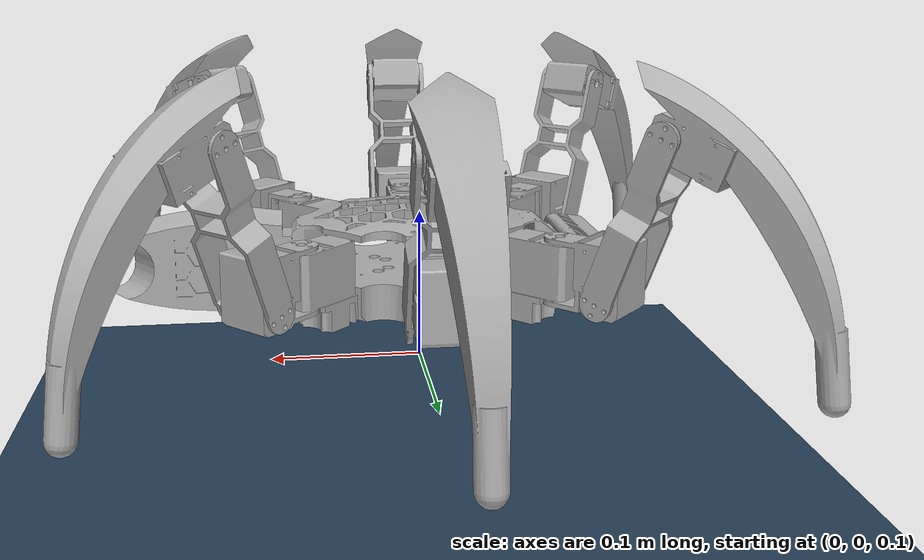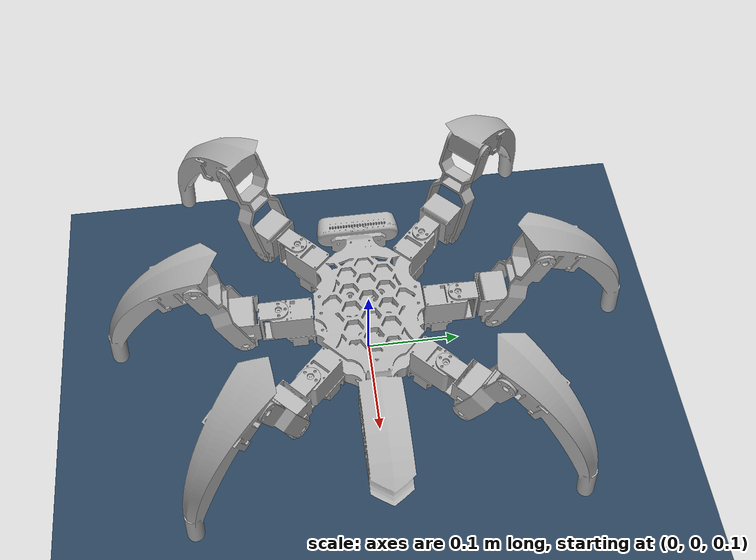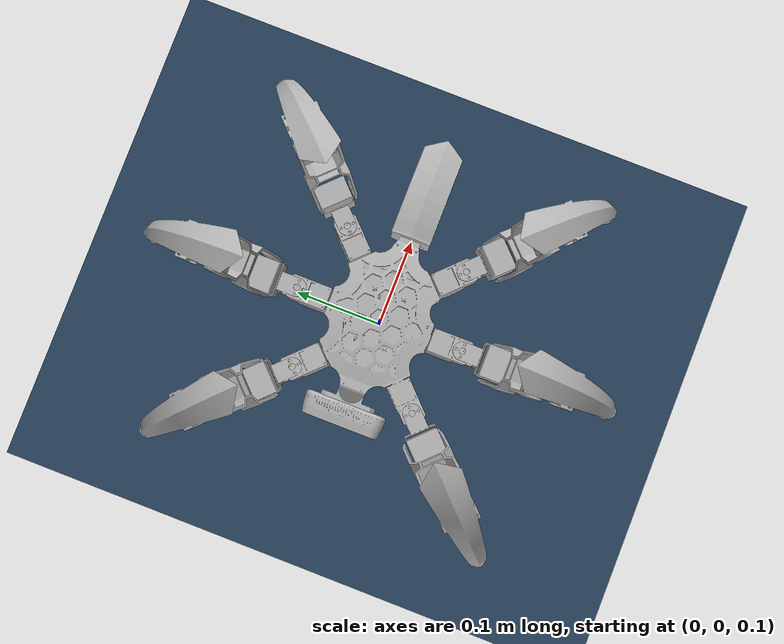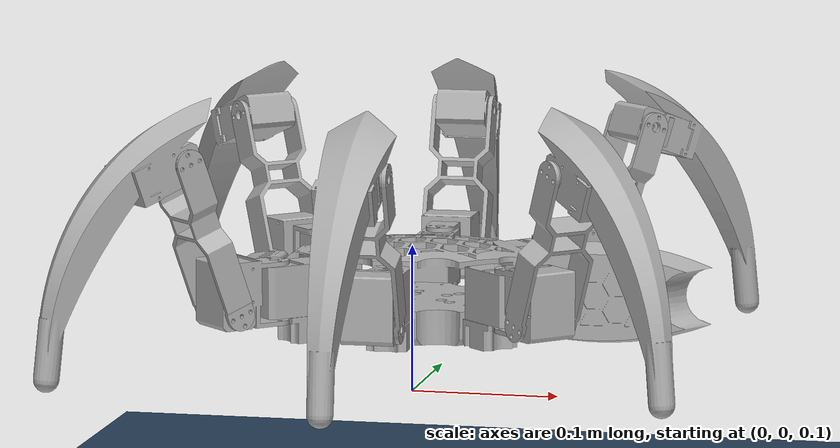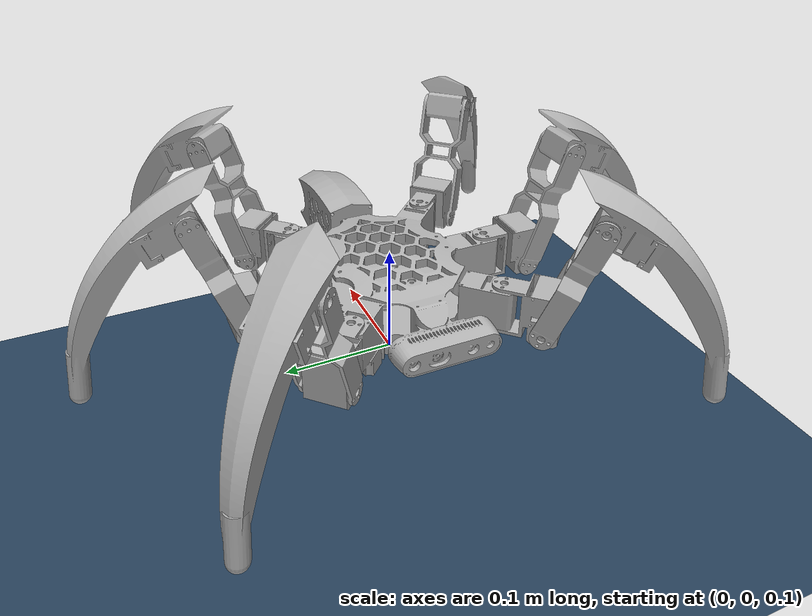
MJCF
<mujoco model="nightmare">
  <compiler angle="radian" settotalmass="3" inertiafromgeom="true"/>
  <option gravity="0 0 -9.81"  integrator="implicitfast" timestep="0.008" iterations="3" ls_iterations="6" noslip_iterations="4" noslip_tolerance="1e-6" solver="PGS"/>
  <asset>
    <mesh name="base_link" file="base_link.stl" scale="0.001 0.001 0.001"/>
    <mesh name="leg_1_tibia" file="leg_1_tibia.stl" scale="0.001 0.001 0.001"/>
    <mesh name="leg_1_coxa" file="leg_1_coxa.stl" scale="0.001 0.001 0.001"/>
    <mesh name="leg_2_tibia" file="leg_2_tibia.stl" scale="0.001 0.001 0.001"/>
    <mesh name="leg_2_coxa" file="leg_2_coxa.stl" scale="0.001 0.001 0.001"/>
    <mesh name="leg_3_tibia" file="leg_3_tibia.stl" scale="0.001 0.001 0.001"/>
    <mesh name="leg_3_coxa" file="leg_3_coxa.stl" scale="0.001 0.001 0.001"/>
    <mesh name="leg_4_tibia" file="leg_4_tibia.stl" scale="0.001 0.001 0.001"/>
    <mesh name="leg_4_femur" file="leg_4_femur.stl" scale="0.001 0.001 0.001"/>
    <mesh name="leg_4_coxa" file="leg_4_coxa.stl" scale="0.001 0.001 0.001"/>
    <mesh name="leg_5_tibia" file="leg_5_tibia.stl" scale="0.001 0.001 0.001"/>
    <mesh name="leg_5_femur" file="leg_5_femur.stl" scale="0.001 0.001 0.001"/>
    <mesh name="leg_5_coxa" file="leg_5_coxa.stl" scale="0.001 0.001 0.001"/>
    <mesh name="leg_6_tibia" file="leg_6_tibia.stl" scale="0.001 0.001 0.001"/>
    <mesh name="leg_6_femur" file="leg_6_femur.stl" scale="0.001 0.001 0.001"/>
    <mesh name="leg_6_coxa" file="leg_6_coxa.stl" scale="0.001 0.001 0.001"/>
    <mesh name="leg_1_femur" file="leg_1_femur.stl" scale="0.001 0.001 0.001"/>
    <mesh name="leg_2_femur" file="leg_2_femur.stl" scale="0.001 0.001 0.001"/>
    <mesh name="leg_3_femur" file="leg_3_femur.stl" scale="0.001 0.001 0.001"/>
    <texture type="skybox" builtin="gradient" rgb1="0.3 0.5 0.7" rgb2="0 0 0" width="512" height="3072"/>
    <texture type="2d" name="groundplane" builtin="checker" mark="edge" rgb1="0.2 0.3 0.4" rgb2="0.1 0.2 0.3"
      markrgb="0.8 0.8 0.8" width="300" height="300"/>
    <material name="groundplane" texture="groundplane" texuniform="true" texrepeat="5 5" reflectance="0.2"/>
  </asset>
  <worldbody>
    <!-- checker board -->
    <light pos="0 0 1.5" dir="0 0 -1" directional="true"/>
    <geom name="floor" size="0 0 0.05" type="plane" material="groundplane" contype="1" conaffinity="1"/>
    <body name="base_link" pos="0 0 0.15">
      <geom quat="0.707107 0 0 0.707107" type="mesh" rgba="0.7 0.7 0.7 1" mesh="base_link" name="base_link" contype="0" conaffinity="1"/>
      <site name="base_link" type="sphere" size="10" pos="0 0 0" rgba="0.7 0.7 0.7 0"/>
      <joint type="free"/>
      <body name="leg_1_coxa" pos="-0.079498 0.067171 0.0455" quat="0.707107 0 0 0.707107">
        <joint name="leg1coxa" pos="0 0 0" axis="0 0 -1"/>
        <geom pos="-0.067171 -0.079498 -0.0455" type="mesh" rgba="0.7 0.7 0.7 1" mesh="leg_1_coxa" name="leg_1_coxa" contype="0" conaffinity="0"/>
        <site name="leg_1_coxa" type="sphere" size="10" pos="0 0 0" rgba="0.7 0.7 0.7 0"/>
        <body name="leg_1_femur" pos="0.014143 0.03889 -0.0285">
          <joint name="leg1femur" pos="0 0 0" axis="0.707107 -0.707107 0"/>
          <geom pos="-0.081314 -0.118388 -0.017" type="mesh" rgba="0.7 0.7 0.7 1" mesh="leg_1_femur" name="leg_1_femur" contype="0" conaffinity="0"/>
          <site name="leg_1_femur" type="sphere" size="10" pos="0 0 0" rgba="0.7 0.7 0.7 0"/>
          <body name="leg_1_tibia" pos="0.026603 0.026603 0.103366">
            <joint name="leg1tibia" pos="0 0 0" axis="-0.707107 0.707107 0"/>
            <geom pos="-0.107917 -0.144991 -0.120366" type="mesh" rgba="0.7 0.7 0.7 1" mesh="leg_1_tibia" name="leg_1_tibia" contype="2" conaffinity="3"/>
            <site name="leg_1_tibia" type="sphere" size="10" pos="0 0 0" rgba="0.7 0.7 0.7 0"/>
            <site name="leg_1_foot" type="sphere" size="0.007" pos="0.083143 0.055315 -0.13882" rgba="0.7 0.7 0.7 0"/>
          </body>
        </body>
      </body>
      <body name="leg_2_coxa" pos="0 0.093 0.0455" quat="0.707107 0 0 0.707107">
        <joint name="leg2coxa" pos="0 0 0" axis="0 0 -1"/>
        <geom pos="-0.093 0 -0.0455" type="mesh" rgba="0.7 0.7 0.7 1" mesh="leg_2_coxa" name="leg_2_coxa" contype="0" conaffinity="0"/>
        <site name="leg_2_coxa" type="sphere" size="10" pos="0 0 0" rgba="0.7 0.7 0.7 0"/>
        <body name="leg_2_femur" pos="0.0375 0.0165 -0.0285">
          <joint name="leg2femur" pos="0 0 0" axis="0 -1 0"/>
          <geom pos="-0.1305 -0.0165 -0.017" type="mesh" rgba="0.7 0.7 0.7 1" mesh="leg_2_femur" name="leg_2_femur" contype="0" conaffinity="0"/>
          <site name="leg_2_femur" type="sphere" size="10" pos="0 0 0" rgba="0.7 0.7 0.7 0"/>
          <body name="leg_2_tibia" pos="0.037622 0 0.103366">
            <joint name="leg2tibia" pos="0 0 0" axis="0 1 0"/>
            <geom pos="-0.168122 -0.0165 -0.120366" type="mesh" rgba="0.7 0.7 0.7 1" mesh="leg_2_tibia" name="leg_2_tibia" contype="2" conaffinity="3"/>
            <site name="leg_2_tibia" type="sphere" size="10" pos="0 0 0" rgba="0.7 0.7 0.7 0"/>
            <site name="leg_2_foot" type="sphere" size="0.007" pos="0.098086 -0.016834 -0.13945" rgba="0.7 0.7 0.7 0"/>
          </body>
        </body>
      </body>
      <body name="leg_3_coxa" pos="0.079498 0.067171 0.0455" quat="0.707107 0 0 0.707107">
        <joint name="leg3coxa" pos="0 0 0" axis="0 0 -1"/>
        <geom pos="-0.067171 0.079498 -0.0455" type="mesh" rgba="0.7 0.7 0.7 1" mesh="leg_3_coxa" name="leg_3_coxa" contype="0" conaffinity="0"/>
        <site name="leg_3_coxa" type="sphere" size="10" pos="0 0 0" rgba="0.7 0.7 0.7 0"/>
        <body name="leg_3_femur" pos="0.038184 -0.014849 -0.0285">
          <joint name="leg3femur" pos="0 0 0" axis="-0.707107 -0.707107 0"/>
          <geom pos="-0.105355 0.094347 -0.017" type="mesh" rgba="0.7 0.7 0.7 1" mesh="leg_3_femur" name="leg_3_femur" contype="0" conaffinity="0"/>
          <site name="leg_3_femur" type="sphere" size="10" pos="0 0 0" rgba="0.7 0.7 0.7 0"/>
          <body name="leg_3_tibia" pos="0.026603 -0.026603 0.103366">
            <joint name="leg3tibia" pos="0 0 0" axis="0.707107 0.707107 0"/>
            <geom pos="-0.131958 0.12095 -0.120366" type="mesh" rgba="0.7 0.7 0.7 1" mesh="leg_3_tibia" name="leg_3_tibia" contype="2" conaffinity="3"/>
            <site name="leg_3_tibia" type="sphere" size="10" pos="0 0 0" rgba="0.7 0.7 0.7 0"/>
            <site name="leg_3_foot" type="sphere" size="0.007" pos="0.057977 -0.080731 -0.13799" rgba="0.7 0.7 0.7 0"/>
          </body>
        </body>
      </body>
      <body name="leg_4_coxa" pos="0.079498 -0.067171 0.0455" quat="0.707107 0 0 0.707107">
        <joint name="leg4coxa" pos="0 0 0" axis="0 0 -1"/>
        <geom pos="0.067171 0.079498 -0.0455" type="mesh" rgba="0.7 0.7 0.7 1" mesh="leg_4_coxa" name="leg_4_coxa" contype="0" conaffinity="0"/>
        <site name="leg_4_coxa" type="sphere" size="10" pos="0 0 0" rgba="0.7 0.7 0.7 0"/>
        <body name="leg_4_femur" pos="-0.014143 -0.03889 -0.0285">
          <joint name="leg4femur" pos="0 0 0" axis="-0.707107 0.707107 0"/>
          <geom pos="0.081314 0.118388 -0.017" type="mesh" rgba="0.7 0.7 0.7 1" mesh="leg_4_femur" name="leg_4_femur" contype="0" conaffinity="0"/>
          <site name="leg_4_femur" type="sphere" size="10" pos="0 0 0" rgba="0.7 0.7 0.7 0"/>
          <body name="leg_4_tibia" pos="-0.026603 -0.026603 0.103366">
            <joint name="leg4tibia" pos="0 0 0" axis="0.707107 -0.707107 0"/>
            <geom pos="0.107917 0.144991 -0.120366" type="mesh" rgba="0.7 0.7 0.7 1" mesh="leg_4_tibia" name="leg_4_tibia" contype="2" conaffinity="3"/>
            <site name="leg_4_tibia" type="sphere" size="10" pos="0 0 0" rgba="0.7 0.7 0.7 0"/>
            <site name="leg_4_foot" type="sphere" size="0.007" pos="-0.083143 -0.055315 -0.13882" rgba="0.7 0.7 0.7 0"/>
          </body>
        </body>
      </body>
      <body name="leg_5_coxa" pos="0 -0.093 0.0455" quat="0.707107 0 0 0.707107">
        <joint name="leg5coxa" pos="0 0 0" axis="0 0 -1"/>
        <geom pos="0.093 0 -0.0455" type="mesh" rgba="0.7 0.7 0.7 1" mesh="leg_5_coxa" name="leg_5_coxa" contype="0" conaffinity="0"/>
        <site name="leg_5_coxa" type="sphere" size="10" pos="0 0 0" rgba="0.7 0.7 0.7 0"/>
        <body name="leg_5_femur" pos="-0.0375 -0.0175 -0.0285">
          <joint name="leg5femur" pos="0 0 0" axis="0 1 0"/>
          <geom pos="0.1305 0.0175 -0.017" type="mesh" rgba="0.7 0.7 0.7 1" mesh="leg_5_femur" name="leg_5_femur" contype="0" conaffinity="0"/>
          <site name="leg_5_femur" type="sphere" size="10" pos="0 0 0" rgba="0.7 0.7 0.7 0"/>
          <body name="leg_5_tibia" pos="-0.037622 0 0.103366">
            <joint name="leg5tibia" pos="0 0 0" axis="0 -1 0"/>
            <geom pos="0.168122 0.0175 -0.120366" type="mesh" rgba="0.7 0.7 0.7 1" mesh="leg_5_tibia" name="leg_5_tibia" contype="2" conaffinity="3"/>
            <site name="leg_5_tibia" type="sphere" size="10" pos="0 0 0" rgba="0.7 0.7 0.7 0"/>
            <site name="leg_5_foot" type="sphere" size="0.007" pos="-0.098086 0.018334 -0.13945" rgba="0.7 0.7 0.7 0"/>
          </body>
        </body>
      </body>
      <body name="leg_6_coxa" pos="-0.079498 -0.067171 0.0455" quat="0.707107 0 0 0.707107">
        <joint name="leg6coxa" pos="0 0 0" axis="0 0 -1"/>
        <geom pos="0.067171 -0.079498 -0.0455" type="mesh" rgba="0.7 0.7 0.7 1" mesh="leg_6_coxa" name="leg_6_coxa" contype="0" conaffinity="0"/>
        <site name="leg_6_coxa" type="sphere" size="10" pos="0 0 0" rgba="0.7 0.7 0.7 0"/>
        <body name="leg_6_femur" pos="-0.038891 0.014142 -0.0285">
          <joint name="leg6femur" pos="0 0 0" axis="0.707107 0.707107 0"/>
          <geom pos="0.106062 -0.09364 -0.017" type="mesh" rgba="0.7 0.7 0.7 1" mesh="leg_6_femur" name="leg_6_femur" contype="0" conaffinity="0"/>
          <site name="leg_6_femur" type="sphere" size="10" pos="0 0 0" rgba="0.7 0.7 0.7 0"/>
          <body name="leg_6_tibia" pos="-0.026603 0.026603 0.103366">
            <joint name="leg6tibia" pos="0 0 0" axis="-0.707107 -0.707107 0"/>
            <geom pos="0.132665 -0.120243 -0.120366" type="mesh" rgba="0.7 0.7 0.7 1" mesh="leg_6_tibia" name="leg_6_tibia" contype="2" conaffinity="3"/>
            <site name="leg_6_tibia" type="sphere" size="10" pos="0 0 0" rgba="0.7 0.7 0.7 0"/>
            <site name="leg_6_foot" type="sphere" size="0.007" pos="-0.057977 0.080731 -0.13799" rgba="0.7 0.7 0.7 0"/>
          </body>
        </body>
      </body>
    </body>
  </worldbody>
  <actuator>
    <velocity name="vel coxa1" ctrllimited="true" ctrlrange="-8 8" joint="leg1coxa" kv="0.8"/>
    <velocity name="vel femur1" ctrllimited="true" ctrlrange="-8 8" joint="leg1femur" kv="0.8"/>
    <velocity name="vel tibia1" ctrllimited="true" ctrlrange="-8 8" joint="leg1tibia" kv="0.8"/>
    <velocity name="vel coxa2" ctrllimited="true" ctrlrange="-8 8" joint="leg2coxa" kv="0.8"/>
    <velocity name="vel femur2" ctrllimited="true" ctrlrange="-8 8" joint="leg2femur" kv="0.8"/>
    <velocity name="vel tibia2" ctrllimited="true" ctrlrange="-8 8" joint="leg2tibia" kv="0.8"/>
    <velocity name="vel coxa3" ctrllimited="true" ctrlrange="-8 8" joint="leg3coxa" kv="0.8"/>
    <velocity name="vel femur3" ctrllimited="true" ctrlrange="-8 8" joint="leg3femur" kv="0.8"/>
    <velocity name="vel tibia3" ctrllimited="true" ctrlrange="-8 8" joint="leg3tibia" kv="0.8"/>
    <velocity name="vel coxa4" ctrllimited="true" ctrlrange="-8 8" joint="leg4coxa" kv="0.8"/>
    <velocity name="vel femur4" ctrllimited="true" ctrlrange="-8 8" joint="leg4femur" kv="0.8"/>
    <velocity name="vel tibia4" ctrllimited="true" ctrlrange="-8 8" joint="leg4tibia" kv="0.8"/>
    <velocity name="vel coxa5" ctrllimited="true" ctrlrange="-8 8" joint="leg5coxa" kv="0.8"/>
    <velocity name="vel femur5" ctrllimited="true" ctrlrange="-8 8" joint="leg5femur" kv="0.8"/>
    <velocity name="vel tibia5" ctrllimited="true" ctrlrange="-8 8" joint="leg5tibia" kv="0.8"/>
    <velocity name="vel coxa6" ctrllimited="true" ctrlrange="-8 8" joint="leg6coxa" kv="0.8"/>
    <velocity name="vel femur6" ctrllimited="true" ctrlrange="-8 8" joint="leg6femur" kv="0.8"/>
    <velocity name="vel tibia6" ctrllimited="true" ctrlrange="-8 8" joint="leg6tibia" kv="0.8"/>
  </actuator>

  <sensor>
    <touch name="leg_1_tibia" site="leg_1_tibia"/>
    <touch name="leg_2_tibia" site="leg_2_tibia"/>
    <touch name="leg_3_tibia" site="leg_3_tibia"/>
    <touch name="leg_4_tibia" site="leg_4_tibia"/>
    <touch name="leg_5_tibia" site="leg_5_tibia"/>
    <touch name="leg_6_tibia" site="leg_6_tibia"/>
    <touch name="leg_1_foot" site="leg_1_foot"/>
    <touch name="leg_2_foot" site="leg_2_foot"/>
    <touch name="leg_3_foot" site="leg_3_foot"/>
    <touch name="leg_4_foot" site="leg_4_foot"/>
    <touch name="leg_5_foot" site="leg_5_foot"/>
    <touch name="leg_6_foot" site="leg_6_foot"/>
    <touch name="base_link" site="base_link"/>
  </sensor>
</mujoco>
